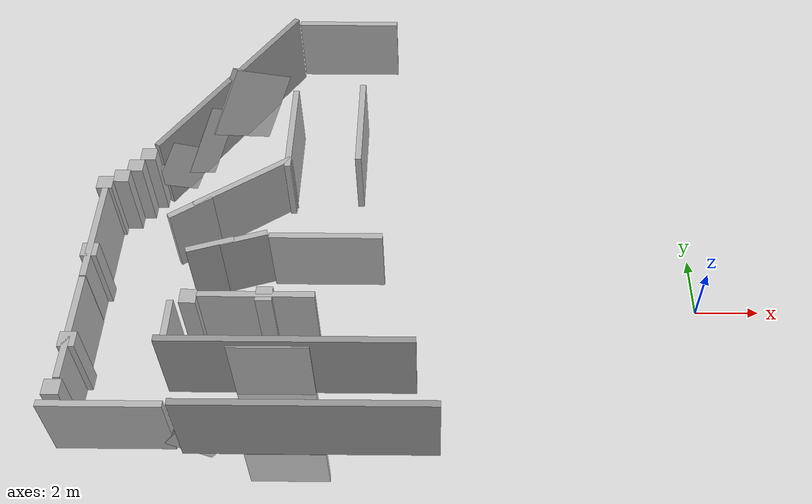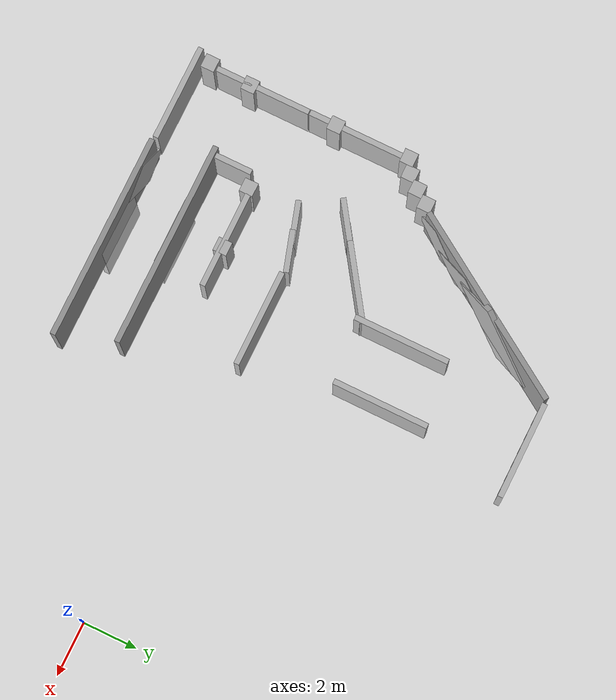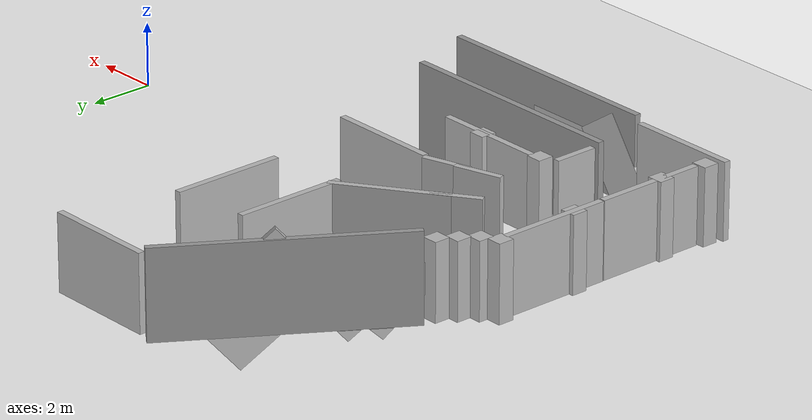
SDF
<sdf version="1.6">
 <world name="default">
  <model name="ground_plane">
   <static>1</static>
   <link name="link">
    <collision name="collision">
     <geometry><plane><normal>0 0 1</normal><size>100 100</size></plane></geometry>
     <surface><friction><ode><mu>100</mu><mu2>50</mu2></ode></friction></surface>
    </collision>
    <visual name="visual">
     <cast_shadows>0</cast_shadows>
     <geometry><plane><normal>0 0 1</normal><size>100 100</size></plane></geometry>
     <material>
      <script><uri>file://media/materials/scripts/gazebo.material</uri><name>Gazebo/Grey</name></script>
     </material>
    </visual>
   </link>
  </model>
  <model name="mywall_net4_1_clone_0">
   <static>1</static>
   <link name="link">
    <pose>0 0 1.4 0 -0 0</pose>
    <collision name="collision"><geometry><box><size>3.5 0.2 2.4</size></box></geometry></collision>
    <visual name="visual">
     <cast_shadows>0</cast_shadows>
     <geometry><box><size>3.5 0.2 2.4</size></box></geometry>
     <material>
      <script>
       <uri>model://mywall_net4/materials/scripts</uri>
       <uri>model://mywall_net4/materials/textures</uri>
       <name>vrc/mywall_net4</name>
      </script>
     </material>
    </visual>
   </link>
   <pose>-10.8563 5.92454 0 0 -0 1.57</pose>
  </model>
  <model name="mywall_net6_1">
   <static>1</static>
   <link name="link">
    <pose>0 0 1.4 0 -0 0</pose>
    <collision name="collision"><geometry><box><size>3.5 0.2 2.4</size></box></geometry></collision>
    <visual name="visual">
     <cast_shadows>0</cast_shadows>
     <geometry><box><size>3.5 0.2 2.4</size></box></geometry>
     <material>
      <script>
       <uri>model://mywall_net6/materials/scripts</uri>
       <uri>model://mywall_net6/materials/textures</uri>
       <name>vrc/mywall_net6</name>
      </script>
     </material>
    </visual>
   </link>
   <pose>-11.694 0.974828 0 0 -0 0</pose>
  </model>
  <model name="mywall_net6_1_clone_clone">
   <static>1</static>
   <link name="link">
    <pose>0 0 1.4 0 -0 0</pose>
    <collision name="collision"><geometry><box><size>3.5 0.2 2.4</size></box></geometry></collision>
    <visual name="visual">
     <cast_shadows>0</cast_shadows>
     <geometry><box><size>3.5 0.2 2.4</size></box></geometry>
     <material>
      <script>
       <uri>model://mywall_net6/materials/scripts</uri>
       <uri>model://mywall_net6/materials/textures</uri>
       <name>vrc/mywall_net6</name>
      </script>
     </material>
    </visual>
   </link>
   <pose>-13.6083 -1.25223 2.8 3.14 -0 0</pose>
  </model>
  <model name="mywall_net8_clone_clone">
   <static>1</static>
   <link name="link">
    <pose>0 0 1.4 0 -0 0</pose>
    <collision name="collision"><geometry><box><size>3.5 0.2 2.4</size></box></geometry></collision>
    <visual name="visual">
     <cast_shadows>0</cast_shadows>
     <geometry><box><size>3.5 0.2 2.4</size></box></geometry>
     <material>
      <script>
       <uri>model://mywall_net8/materials/scripts</uri>
       <uri>model://mywall_net8/materials/textures</uri>
       <name>vrc/mywall_net8</name>
      </script>
     </material>
    </visual>
   </link>
   <pose>-14.5 3.2 0 0 -0 0.6</pose>
  </model>
  <model name="mywall0">
   <static>1</static>
   <link name="link">
    <pose>0 0 1.4 0 -0 0</pose>
    <collision name="collision"><geometry><box><size>3.5 0.2 2.4</size></box></geometry></collision>
    <visual name="visual">
     <cast_shadows>0</cast_shadows>
     <geometry><box><size>3.5 0.2 2.4</size></box></geometry>
     <material>
      <script>
       <uri>model://mywall0/materials/scripts</uri>
       <uri>model://mywall0/materials/textures</uri>
       <name>vrc/mywall0</name>
      </script>
     </material>
    </visual>
   </link>
   <pose>-11.5252 10.8828 0 0 -0 0</pose>
  </model>
  <model name="mypillar_0">
   <static>1</static>
   <link name="link">
    <pose>0 0 1.4 0 -0 0</pose>
    <collision name="collision"><geometry><box><size>0.5 0.5 2.4</size></box></geometry></collision>
    <visual name="visual">
     <cast_shadows>0</cast_shadows>
     <geometry><box><size>0.5 0.5 2.4</size></box></geometry>
     <material>
      <script>
       <uri>model://mypillar/materials/scripts</uri>
       <uri>model://mypillar/materials/textures</uri>
       <name>vrc/mypillar</name>
      </script>
     </material>
    </visual>
   </link>
   <pose>-15.594 -1.34066 0 0 -0 0</pose>
  </model>
  <model name="mywall_net11_0_clone">
   <static>1</static>
   <link name="link">
    <pose>0 0 1.4 0 -0 0</pose>
    <collision name="collision"><geometry><box><size>1.5 0.2 2.4</size></box></geometry></collision>
    <visual name="visual">
     <cast_shadows>0</cast_shadows>
     <geometry><box><size>1.5 0.2 2.4</size></box></geometry>
     <material>
      <script>
       <uri>model://mywall_net11/materials/scripts</uri>
       <uri>model://mywall_net11/materials/textures</uri>
       <name>vrc/mywall_net11</name>
      </script>
     </material>
    </visual>
   </link>
   <pose>-16.0991 -2.23935 0 0 -0 1.57</pose>
  </model>
  <model name="mywall_net11_1">
   <static>1</static>
   <link name="link">
    <pose>0 0 1.4 0 -0 0</pose>
    <collision name="collision"><geometry><box><size>1.5 0.2 2.4</size></box></geometry></collision>
    <visual name="visual">
     <cast_shadows>0</cast_shadows>
     <geometry><box><size>1.5 0.2 2.4</size></box></geometry>
     <material>
      <script>
       <uri>model://mywall_net11/materials/scripts</uri>
       <uri>model://mywall_net11/materials/textures</uri>
       <name>vrc/mywall_net11</name>
      </script>
     </material>
    </visual>
   </link>
   <pose>-14.2129 0.8735 0 0 -0 0.3</pose>
  </model>
  <model name="grey_wall_0_clone">
   <static>1</static>
   <link name="link">
    <pose>0 0 1.4 0 -0 0</pose>
    <collision name="collision"><geometry><box><size>7.5 0.2 2.8</size></box></geometry></collision>
    <visual name="visual">
     <cast_shadows>0</cast_shadows>
     <geometry><box><size>7.5 0.2 2.8</size></box></geometry>
     <material>
      <script>
       <uri>model://grey_wall/materials/scripts</uri>
       <uri>model://grey_wall/materials/textures</uri>
       <name>vrc/grey_wall</name>
      </script>
     </material>
    </visual>
   </link>
   <pose>-15.4191 7.71104 0 0 -0 1</pose>
  </model>
  <model name="mywall_net4_1_clone_0_clone">
   <static>1</static>
   <link name="link">
    <pose>0 0 1.4 0 -0 0</pose>
    <collision name="collision"><geometry><box><size>3.5 0.2 2.4</size></box></geometry></collision>
    <visual name="visual">
     <cast_shadows>0</cast_shadows>
     <geometry><box><size>3.5 0.2 2.4</size></box></geometry>
     <material>
      <script>
       <uri>model://mywall_net4/materials/scripts</uri>
       <uri>model://mywall_net4/materials/textures</uri>
       <name>vrc/mywall_net4</name>
      </script>
     </material>
    </visual>
   </link>
   <pose>-13.1395 5.60797 0 0 -0 1.57</pose>
  </model>
  <model name="mywall_net7_1_clone">
   <static>1</static>
   <link name="link">
    <pose>0 0 1.4 0 -0 0</pose>
    <collision name="collision"><geometry><box><size>3.5 0.2 2.4</size></box></geometry></collision>
    <visual name="visual">
     <cast_shadows>0</cast_shadows>
     <geometry><box><size>3.5 0.2 2.4</size></box></geometry>
     <material>
      <script>
       <uri>model://mywall_net7/materials/scripts</uri>
       <uri>model://mywall_net7/materials/textures</uri>
       <name>vrc/mywall_net7</name>
      </script>
     </material>
    </visual>
   </link>
   <pose>-18.8571 1.13441 0 0 -0 1.57</pose>
  </model>
  <model name="mypillar_2">
   <static>1</static>
   <link name="link">
    <pose>0 0 1.4 0 -0 0</pose>
    <collision name="collision"><geometry><box><size>0.5 0.5 2.4</size></box></geometry></collision>
    <visual name="visual">
     <cast_shadows>0</cast_shadows>
     <geometry><box><size>0.5 0.5 2.4</size></box></geometry>
     <material>
      <script>
       <uri>model://mypillar/materials/scripts</uri>
       <uri>model://mypillar/materials/textures</uri>
       <name>vrc/mypillar</name>
      </script>
     </material>
    </visual>
   </link>
   <pose>-18.9055 3.11089 0 0 -0 0</pose>
  </model>
  <model name="mypillar_3">
   <static>1</static>
   <link name="link">
    <pose>0 0 1.4 0 -0 0</pose>
    <collision name="collision"><geometry><box><size>0.5 0.5 2.4</size></box></geometry></collision>
    <visual name="visual">
     <cast_shadows>0</cast_shadows>
     <geometry><box><size>0.5 0.5 2.4</size></box></geometry>
     <material>
      <script>
       <uri>model://mypillar/materials/scripts</uri>
       <uri>model://mypillar/materials/textures</uri>
       <name>vrc/mypillar</name>
      </script>
     </material>
    </visual>
   </link>
   <pose>-17.7063 4.33266 0 0 -0 0</pose>
  </model>
  <model name="mypillar_4">
   <static>1</static>
   <link name="link">
    <pose>0 0 1.4 0 -0 0</pose>
    <collision name="collision"><geometry><box><size>0.5 0.5 2.4</size></box></geometry></collision>
    <visual name="visual">
     <cast_shadows>0</cast_shadows>
     <geometry><box><size>0.5 0.5 2.4</size></box></geometry>
     <material>
      <script>
       <uri>model://mypillar/materials/scripts</uri>
       <uri>model://mypillar/materials/textures</uri>
       <name>vrc/mypillar</name>
      </script>
     </material>
    </visual>
   </link>
   <pose>-18.0478 3.84526 0 0 -0 0</pose>
  </model>
  <model name="mypillar_5">
   <static>1</static>
   <link name="link">
    <pose>0 0 1.4 0 -0 0</pose>
    <collision name="collision"><geometry><box><size>0.5 0.5 2.4</size></box></geometry></collision>
    <visual name="visual">
     <cast_shadows>0</cast_shadows>
     <geometry><box><size>0.5 0.5 2.4</size></box></geometry>
     <material>
      <script>
       <uri>model://mypillar/materials/scripts</uri>
       <uri>model://mypillar/materials/textures</uri>
       <name>vrc/mypillar</name>
      </script>
     </material>
    </visual>
   </link>
   <pose>-18.4243 3.39207 0 0 -0 0</pose>
  </model>
  <model name="mywall_net7_1_clone_clone">
   <static>1</static>
   <link name="link">
    <pose>0 0 1.4 0 -0 0</pose>
    <collision name="collision"><geometry><box><size>3.5 0.2 2.4</size></box></geometry></collision>
    <visual name="visual">
     <cast_shadows>0</cast_shadows>
     <geometry><box><size>3.5 0.2 2.4</size></box></geometry>
     <material>
      <script>
       <uri>model://mywall_net7/materials/scripts</uri>
       <uri>model://mywall_net7/materials/textures</uri>
       <name>vrc/mywall_net7</name>
      </script>
     </material>
    </visual>
   </link>
   <pose>-18.853 -2.40159 0 0 -0 1.57</pose>
  </model>
  <model name="grey_wall_2_clone_4">
   <static>1</static>
   <link name="link">
    <pose>0 0 1.4 0 -0 0</pose>
    <collision name="collision"><geometry><box><size>7.5 0.2 2.8</size></box></geometry></collision>
    <visual name="visual">
     <cast_shadows>0</cast_shadows>
     <geometry><box><size>7.5 0.2 2.8</size></box></geometry>
     <material>
      <script>
       <uri>model://grey_wall/materials/scripts</uri>
       <uri>model://grey_wall/materials/textures</uri>
       <name>vrc/grey_wall</name>
      </script>
     </material>
    </visual>
   </link>
   <pose>-11.8717 -5.01121 0 0 -0 0</pose>
  </model>
  <model name="mywall_net7_1_clone_clone_clone_clone">
   <static>1</static>
   <link name="link">
    <pose>0 0 1.4 0 -0 0</pose>
    <collision name="collision"><geometry><box><size>3.5 0.2 2.4</size></box></geometry></collision>
    <visual name="visual">
     <cast_shadows>0</cast_shadows>
     <geometry><box><size>3.5 0.2 2.4</size></box></geometry>
     <material>
      <script>
       <uri>model://mywall_net7/materials/scripts</uri>
       <uri>model://mywall_net7/materials/textures</uri>
       <name>vrc/mywall_net7</name>
      </script>
     </material>
    </visual>
   </link>
   <pose>-17.5118 -4.9727 2.8 3.14 -0 0</pose>
  </model>
  <model name="mypillar_4_clone">
   <static>1</static>
   <link name="link">
    <pose>0 0 1.4 0 -0 0</pose>
    <collision name="collision"><geometry><box><size>0.5 0.5 2.4</size></box></geometry></collision>
    <visual name="visual">
     <cast_shadows>0</cast_shadows>
     <geometry><box><size>0.5 0.5 2.4</size></box></geometry>
     <material>
      <script>
       <uri>model://mypillar/materials/scripts</uri>
       <uri>model://mypillar/materials/textures</uri>
       <name>vrc/mypillar</name>
      </script>
     </material>
    </visual>
   </link>
   <pose>-18.9241 -4.45153 0 0 -0 0</pose>
  </model>
  <model name="grey_wall_2_clone_0_clone">
   <static>1</static>
   <link name="link">
    <pose>0 0 1.4 0 -0 0</pose>
    <collision name="collision"><geometry><box><size>7.5 0.2 2.8</size></box></geometry></collision>
    <visual name="visual">
     <cast_shadows>0</cast_shadows>
     <geometry><box><size>7.5 0.2 2.8</size></box></geometry>
     <material>
      <script>
       <uri>model://grey_wall/materials/scripts</uri>
       <uri>model://grey_wall/materials/textures</uri>
       <name>vrc/grey_wall</name>
      </script>
     </material>
    </visual>
   </link>
   <pose>-12.5864 -2.95024 0 0 -0 0</pose>
  </model>
  <model name="mywall_net6_1_clone_clone_1">
   <static>1</static>
   <link name="link">
    <pose>0 0 1.4 0 -0 0</pose>
    <collision name="collision"><geometry><box><size>3.5 0.2 2.4</size></box></geometry></collision>
    <visual name="visual">
     <cast_shadows>0</cast_shadows>
     <geometry><box><size>3.5 0.2 2.4</size></box></geometry>
     <material>
      <script>
       <uri>model://mywall_net6/materials/scripts</uri>
       <uri>model://mywall_net6/materials/textures</uri>
       <name>vrc/mywall_net6</name>
      </script>
     </material>
    </visual>
   </link>
   <pose>-14.0457 -5.01069 0 0 1.57 0</pose>
  </model>
  <model name="mywall_net3_clone_clone_clone_0">
   <static>1</static>
   <link name="link">
    <pose>0 0 1.4 0 -0 0</pose>
    <collision name="collision"><geometry><box><size>3.5 0.2 2.4</size></box></geometry></collision>
    <visual name="visual">
     <cast_shadows>0</cast_shadows>
     <geometry><box><size>3.5 0.2 2.4</size></box></geometry>
     <material>
      <script>
       <uri>model://mywall_net3/materials/scripts</uri>
       <uri>model://mywall_net3/materials/textures</uri>
       <name>vrc/mywall_net3</name>
      </script>
     </material>
    </visual>
   </link>
   <pose>-14.4845 -3 0.8 0 1.57 0</pose>
  </model>
  <model name="mypillar_3_clone">
   <static>1</static>
   <link name="link">
    <pose>0 0 1.4 0 -0 0</pose>
    <collision name="collision"><geometry><box><size>0.5 0.5 2.4</size></box></geometry></collision>
    <visual name="visual">
     <cast_shadows>0</cast_shadows>
     <geometry><box><size>0.5 0.5 2.4</size></box></geometry>
     <material>
      <script>
       <uri>model://mypillar/materials/scripts</uri>
       <uri>model://mypillar/materials/textures</uri>
       <name>vrc/mypillar</name>
      </script>
     </material>
    </visual>
   </link>
   <pose>-18.8475 0.375721 0 0 -0 0</pose>
  </model>
  <model name="mypillar_3_clone_0">
   <static>1</static>
   <link name="link">
    <pose>0 0 1.4 0 -0 0</pose>
    <collision name="collision"><geometry><box><size>0.5 0.5 2.4</size></box></geometry></collision>
    <visual name="visual">
     <cast_shadows>0</cast_shadows>
     <geometry><box><size>0.5 0.5 2.4</size></box></geometry>
     <material>
      <script>
       <uri>model://mypillar/materials/scripts</uri>
       <uri>model://mypillar/materials/textures</uri>
       <name>vrc/mypillar</name>
      </script>
     </material>
    </visual>
   </link>
   <pose>-18.8275 -2.8801 0 0 -0 0</pose>
  </model>
  <model name="mypillar_3_clone_1">
   <static>1</static>
   <link name="link">
    <pose>0 0 1.4 0 -0 0</pose>
    <collision name="collision"><geometry><box><size>0.5 0.5 2.4</size></box></geometry></collision>
    <visual name="visual">
     <cast_shadows>0</cast_shadows>
     <geometry><box><size>0.5 0.5 2.4</size></box></geometry>
     <material>
      <script>
       <uri>model://mypillar/materials/scripts</uri>
       <uri>model://mypillar/materials/textures</uri>
       <name>vrc/mypillar</name>
      </script>
     </material>
    </visual>
   </link>
   <pose>-13.3627 -1.23216 0 0 -0 0</pose>
  </model>
  <model name="mywall_net8_clone_clone_0_clone">
   <static>1</static>
   <link name="link">
    <pose>0 0 1.4 0 -0 0</pose>
    <collision name="collision"><geometry><box><size>3.5 0.2 2.4</size></box></geometry></collision>
    <visual name="visual">
     <cast_shadows>0</cast_shadows>
     <geometry><box><size>3.5 0.2 2.4</size></box></geometry>
     <material>
      <script>
       <uri>model://mywall_net8/materials/scripts</uri>
       <uri>model://mywall_net8/materials/textures</uri>
       <name>vrc/mywall_net8</name>
      </script>
     </material>
    </visual>
   </link>
   <pose>-15.477 7.5 -3e-06 0 0.735 1</pose>
  </model>
  <model name="mywall_net11_0">
   <static>1</static>
   <link name="link">
    <pose>0 0 1.4 0 -0 0</pose>
    <collision name="collision"><geometry><box><size>1.5 0.2 2.4</size></box></geometry></collision>
    <visual name="visual">
     <cast_shadows>0</cast_shadows>
     <geometry><box><size>1.5 0.2 2.4</size></box></geometry>
     <material>
      <script>
       <uri>model://mywall_net11/materials/scripts</uri>
       <uri>model://mywall_net11/materials/textures</uri>
       <name>vrc/mywall_net11</name>
      </script>
     </material>
    </visual>
   </link>
   <pose>-16.6873 5.6967 -3e-06 0 0.735 1</pose>
  </model>
  <model name="mywall_net1_1_clone">
   <static>1</static>
   <link name="link">
    <pose>0 0 1.4 0 -0 0</pose>
    <collision name="collision"><geometry><box><size>1.5 0.2 2.4</size></box></geometry></collision>
    <visual name="visual">
     <cast_shadows>0</cast_shadows>
     <geometry><box><size>1.5 0.2 2.4</size></box></geometry>
     <material>
      <script>
       <uri>model://mywall_net1/materials/scripts</uri>
       <uri>model://mywall_net1/materials/textures</uri>
       <name>vrc/mywall_net1</name>
      </script>
     </material>
    </visual>
   </link>
   <pose>-16.462 6.06613 -3e-06 0 -0.735 1</pose>
  </model>
  <model name="mywall_net11_1_clone_clone">
   <static>1</static>
   <link name="link">
    <pose>0 0 1.4 0 -0 0</pose>
    <collision name="collision"><geometry><box><size>1.5 0.2 2.4</size></box></geometry></collision>
    <visual name="visual">
     <cast_shadows>0</cast_shadows>
     <geometry><box><size>1.5 0.2 2.4</size></box></geometry>
     <material>
      <script>
       <uri>model://mywall_net11/materials/scripts</uri>
       <uri>model://mywall_net11/materials/textures</uri>
       <name>vrc/mywall_net11</name>
      </script>
     </material>
    </visual>
   </link>
   <pose>-15.5352 -5 0 0 0.6 0</pose>
  </model>
  <model name="mywall_net11_1_clone_1">
   <static>1</static>
   <link name="link">
    <pose>0 0 1.4 0 -0 0</pose>
    <collision name="collision"><geometry><box><size>1.5 0.2 2.4</size></box></geometry></collision>
    <visual name="visual">
     <cast_shadows>0</cast_shadows>
     <geometry><box><size>1.5 0.2 2.4</size></box></geometry>
     <material>
      <script>
       <uri>model://mywall_net11/materials/scripts</uri>
       <uri>model://mywall_net11/materials/textures</uri>
       <name>vrc/mywall_net11</name>
      </script>
     </material>
    </visual>
   </link>
   <pose>-15.2138 0.600691 0 0 -0 0.3</pose>
  </model>
  <model name="mywall_net10_clone_clone">
   <static>1</static>
   <link name="link">
    <pose>0 0 1.4 0 -0 0</pose>
    <collision name="collision"><geometry><box><size>1.5 0.2 2.4</size></box></geometry></collision>
    <visual name="visual">
     <cast_shadows>0</cast_shadows>
     <geometry><box><size>1.5 0.2 2.4</size></box></geometry>
     <material>
      <script>
       <uri>model://mywall_net10/materials/scripts</uri>
       <uri>model://mywall_net10/materials/textures</uri>
       <name>vrc/mywall_net10</name>
      </script>
     </material>
    </visual>
   </link>
   <pose>-16.0455 2.12763 0 0 -0 0.6</pose>
  </model>
 </world>
</sdf>
